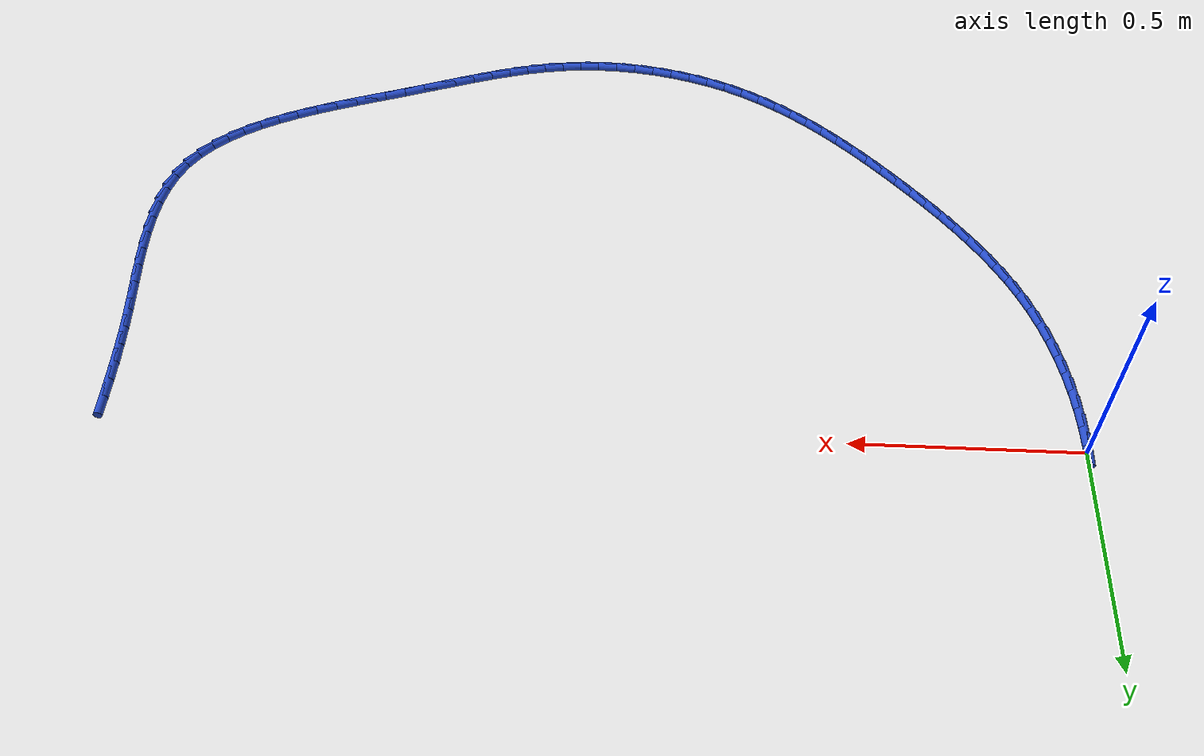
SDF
<sdf version="1.6">
 <world name="default">
  <model name="ground_plane">
   <static>1</static>
   <link name="link">
    <collision name="collision">
     <geometry><plane><normal>0 0 1</normal><size>100 100</size></plane></geometry>
     <surface><friction><ode><mu>100</mu><mu2>50</mu2></ode></friction></surface>
    </collision>
    <visual name="visual">
     <cast_shadows>0</cast_shadows>
     <geometry><plane><normal>0 0 1</normal><size>100 100</size></plane></geometry>
     <material>
      <script><uri>file://media/materials/scripts/gazebo.material</uri><name>Gazebo/WhiteGlow</name></script>
     </material>
    </visual>
   </link>
  </model>
  <model name="line">
   <link name="link_0">
    <pose>-2.7755575615628914e-17 5.551115123125783e-17 0.01 0 1.57 1.5577472647489992</pose>
    <collision name="collision">
     <geometry><cylinder><radius>0.01</radius><length>0.08</length></cylinder></geometry>
    </collision>
    <visual name="visual">
     <material>
      <script><name>Gazebo/Blue</name><uri>file://media/materials/scripts/gazebo.material</uri></script>
     </material>
     <geometry><cylinder><radius>0.01</radius><length>0.08</length></cylinder></geometry>
    </visual>
   </link>
   <link name="link_76">
    <pose>2.0851987181735137 -0.03245396486556951 0.01 0 1.57 1.543353225734103</pose>
    <collision name="collision">
     <geometry><cylinder><radius>0.01</radius><length>0.08</length></cylinder></geometry>
    </collision>
    <visual name="visual">
     <material>
      <script><name>Gazebo/Blue</name><uri>file://media/materials/scripts/gazebo.material</uri></script>
     </material>
     <geometry><cylinder><radius>0.01</radius><length>0.08</length></cylinder></geometry>
    </visual>
   </link>
   <link name="link_77">
    <pose>2.083941988912887 -0.07823646412096802 0.01 0 1.57 1.5559711853120826</pose>
    <collision name="collision">
     <geometry><cylinder><radius>0.01</radius><length>0.08</length></cylinder></geometry>
    </collision>
    <visual name="visual">
     <material>
      <script><name>Gazebo/Blue</name><uri>file://media/materials/scripts/gazebo.material</uri></script>
     </material>
     <geometry><cylinder><radius>0.01</radius><length>0.08</length></cylinder></geometry>
    </visual>
   </link>
   <link name="link_78">
    <pose>2.083257127473531 -0.12442902595015973 0.01 0 1.57 -1.5707219004072486</pose>
    <collision name="collision">
     <geometry><cylinder><radius>0.01</radius><length>0.08</length></cylinder></geometry>
    </collision>
    <visual name="visual">
     <material>
      <script><name>Gazebo/Blue</name><uri>file://media/materials/scripts/gazebo.material</uri></script>
     </material>
     <geometry><cylinder><radius>0.01</radius><length>0.08</length></cylinder></geometry>
    </visual>
   </link>
   <link name="link_79">
    <pose>2.083260607613483 -0.1711885161762562 0.01 0 1.57 -1.553775233454882</pose>
    <collision name="collision">
     <geometry><cylinder><radius>0.01</radius><length>0.08</length></cylinder></geometry>
    </collision>
    <visual name="visual">
     <material>
      <script><name>Gazebo/Blue</name><uri>file://media/materials/scripts/gazebo.material</uri></script>
     </material>
     <geometry><cylinder><radius>0.01</radius><length>0.08</length></cylinder></geometry>
    </visual>
   </link>
   <link name="link_80">
    <pose>2.0840689030907855 -0.21867180062236596 0.01 0 1.57 -1.5350500490795695</pose>
    <collision name="collision">
     <geometry><cylinder><radius>0.01</radius><length>0.08</length></cylinder></geometry>
    </collision>
    <visual name="visual">
     <material>
      <script><name>Gazebo/Blue</name><uri>file://media/materials/scripts/gazebo.material</uri></script>
     </material>
     <geometry><cylinder><radius>0.01</radius><length>0.08</length></cylinder></geometry>
    </visual>
   </link>
   <link name="link_81">
    <pose>2.085798470335357 -0.26703573147210274 0.01 0 1.57 -1.517720080324469</pose>
    <collision name="collision">
     <geometry><cylinder><radius>0.01</radius><length>0.08</length></cylinder></geometry>
    </collision>
    <visual name="visual">
     <material>
      <script><name>Gazebo/Blue</name><uri>file://media/materials/scripts/gazebo.material</uri></script>
     </material>
     <geometry><cylinder><radius>0.01</radius><length>0.08</length></cylinder></geometry>
    </visual>
   </link>
   <link name="link_82">
    <pose>2.0884167461445657 -0.31631986295380154 0.01 0 1.57 -1.5114145491426505</pose>
    <collision name="collision">
     <geometry><cylinder><radius>0.01</radius><length>0.08</length></cylinder></geometry>
    </collision>
    <visual name="visual">
     <material>
      <script><name>Gazebo/Blue</name><uri>file://media/materials/scripts/gazebo.material</uri></script>
     </material>
     <geometry><cylinder><radius>0.01</radius><length>0.08</length></cylinder></geometry>
    </visual>
   </link>
   <link name="link_83">
    <pose>2.0913799040684906 -0.3661613182034126 0.01 0 1.57 -1.5176996360397241</pose>
    <collision name="collision">
     <geometry><cylinder><radius>0.01</radius><length>0.08</length></cylinder></geometry>
    </collision>
    <visual name="visual">
     <material>
      <script><name>Gazebo/Blue</name><uri>file://media/materials/scripts/gazebo.material</uri></script>
     </material>
     <geometry><cylinder><radius>0.01</radius><length>0.08</length></cylinder></geometry>
    </visual>
   </link>
   <link name="link_84">
    <pose>2.094034561278242 -0.41611098514733563 0.01 0 1.57 -1.5366870906105743</pose>
    <collision name="collision">
     <geometry><cylinder><radius>0.01</radius><length>0.08</length></cylinder></geometry>
    </collision>
    <visual name="visual">
     <material>
      <script><name>Gazebo/Blue</name><uri>file://media/materials/scripts/gazebo.material</uri></script>
     </material>
     <geometry><cylinder><radius>0.01</radius><length>0.08</length></cylinder></geometry>
    </visual>
   </link>
   <link name="link_85">
    <pose>2.095727334944926 -0.46571975171196783 0.01 0 1.57 -1.569208674036933</pose>
    <collision name="collision">
     <geometry><cylinder><radius>0.01</radius><length>0.08</length></cylinder></geometry>
    </collision>
    <visual name="visual">
     <material>
      <script><name>Gazebo/Blue</name><uri>file://media/materials/scripts/gazebo.material</uri></script>
     </material>
     <geometry><cylinder><radius>0.01</radius><length>0.08</length></cylinder></geometry>
    </visual>
   </link>
   <link name="link_86">
    <pose>2.0958048422396547 -0.5145385058237091 0.01 0 1.57 1.5247767401578185</pose>
    <collision name="collision">
     <geometry><cylinder><radius>0.01</radius><length>0.08</length></cylinder></geometry>
    </collision>
    <visual name="visual">
     <material>
      <script><name>Gazebo/Blue</name><uri>file://media/materials/scripts/gazebo.material</uri></script>
     </material>
     <geometry><cylinder><radius>0.01</radius><length>0.08</length></cylinder></geometry>
    </visual>
   </link>
   <link name="link_87">
    <pose>2.093613700333535 -0.5621181354089567 0.01 0 1.57 1.4598349640938602</pose>
    <collision name="collision">
     <geometry><cylinder><radius>0.01</radius><length>0.08</length></cylinder></geometry>
    </collision>
    <visual name="visual">
     <material>
      <script><name>Gazebo/Blue</name><uri>file://media/materials/scripts/gazebo.material</uri></script>
     </material>
     <geometry><cylinder><radius>0.01</radius><length>0.08</length></cylinder></geometry>
    </visual>
   </link>
   <link name="link_88">
    <pose>2.0885005263976786 -0.6080095283941087 0.01 0 1.57 1.374768487740471</pose>
    <collision name="collision">
     <geometry><cylinder><radius>0.01</radius><length>0.08</length></cylinder></geometry>
    </collision>
    <visual name="visual">
     <material>
      <script><name>Gazebo/Blue</name><uri>file://media/materials/scripts/gazebo.material</uri></script>
     </material>
     <geometry><cylinder><radius>0.01</radius><length>0.08</length></cylinder></geometry>
    </visual>
   </link>
   <link name="link_89">
    <pose>2.0798119376031905 -0.6517635727055644 0.01 0 1.57 1.2667496965277025</pose>
    <collision name="collision">
     <geometry><cylinder><radius>0.01</radius><length>0.08</length></cylinder></geometry>
    </collision>
    <visual name="visual">
     <material>
      <script><name>Gazebo/Blue</name><uri>file://media/materials/scripts/gazebo.material</uri></script>
     </material>
     <geometry><cylinder><radius>0.01</radius><length>0.08</length></cylinder></geometry>
    </visual>
   </link>
   <link name="link_90">
    <pose>2.066894551121184 -0.6929311562697221 0.01 0 1.57 1.1340695664018547</pose>
    <collision name="collision">
     <geometry><cylinder><radius>0.01</radius><length>0.08</length></cylinder></geometry>
    </collision>
    <visual name="visual">
     <material>
      <script><name>Gazebo/Blue</name><uri>file://media/materials/scripts/gazebo.material</uri></script>
     </material>
     <geometry><cylinder><radius>0.01</radius><length>0.08</length></cylinder></geometry>
    </visual>
   </link>
   <link name="link_91">
    <pose>2.0490949867210158 -0.7310631686291307 0.01 0 1.57 0.9840753918291316</pose>
    <collision name="collision">
     <geometry><cylinder><radius>0.01</radius><length>0.08</length></cylinder></geometry>
    </collision>
    <visual name="visual">
     <material>
      <script><name>Gazebo/Blue</name><uri>file://media/materials/scripts/gazebo.material</uri></script>
     </material>
     <geometry><cylinder><radius>0.01</radius><length>0.08</length></cylinder></geometry>
    </visual>
   </link>
   <link name="link_92">
    <pose>2.0259727996602925 -0.7658429484804289 0.01 0 1.57 0.8441773202392268</pose>
    <collision name="collision">
     <geometry><cylinder><radius>0.01</radius><length>0.08</length></cylinder></geometry>
    </collision>
    <visual name="visual">
     <material>
      <script><name>Gazebo/Blue</name><uri>file://media/materials/scripts/gazebo.material</uri></script>
     </material>
     <geometry><cylinder><radius>0.01</radius><length>0.08</length></cylinder></geometry>
    </visual>
   </link>
   <link name="link_93">
    <pose>1.9978811903860239 -0.79744749405464 0.01 0 1.57 0.7234038554634935</pose>
    <collision name="collision">
     <geometry><cylinder><radius>0.01</radius><length>0.08</length></cylinder></geometry>
    </collision>
    <visual name="visual">
     <material>
      <script><name>Gazebo/Blue</name><uri>file://media/materials/scripts/gazebo.material</uri></script>
     </material>
     <geometry><cylinder><radius>0.01</radius><length>0.08</length></cylinder></geometry>
    </visual>
   </link>
   <link name="link_94">
    <pose>1.9653582245256056 -0.8261687925729468 0.01 0 1.57 0.6223995451969639</pose>
    <collision name="collision">
     <geometry><cylinder><radius>0.01</radius><length>0.08</length></cylinder></geometry>
    </collision>
    <visual name="visual">
     <material>
      <script><name>Gazebo/Blue</name><uri>file://media/materials/scripts/gazebo.material</uri></script>
     </material>
     <geometry><cylinder><radius>0.01</radius><length>0.08</length></cylinder></geometry>
    </visual>
   </link>
   <link name="link_95">
    <pose>1.9289419677064323 -0.8522988312565305 0.01 0 1.57 0.5398253953865746</pose>
    <collision name="collision">
     <geometry><cylinder><radius>0.01</radius><length>0.08</length></cylinder></geometry>
    </collision>
    <visual name="visual">
     <material>
      <script><name>Gazebo/Blue</name><uri>file://media/materials/scripts/gazebo.material</uri></script>
     </material>
     <geometry><cylinder><radius>0.01</radius><length>0.08</length></cylinder></geometry>
    </visual>
   </link>
   <link name="link_96">
    <pose>1.8891704855559008 -0.8761295973265729 0.01 0 1.57 0.4735380522900093</pose>
    <collision name="collision">
     <geometry><cylinder><radius>0.01</radius><length>0.08</length></cylinder></geometry>
    </collision>
    <visual name="visual">
     <material>
      <script><name>Gazebo/Blue</name><uri>file://media/materials/scripts/gazebo.material</uri></script>
     </material>
     <geometry><cylinder><radius>0.01</radius><length>0.08</length></cylinder></geometry>
    </visual>
   </link>
   <link name="link_97">
    <pose>1.8465818437014039 -0.8979530780042566 0.01 0 1.57 0.42132751541206054</pose>
    <collision name="collision">
     <geometry><cylinder><radius>0.01</radius><length>0.08</length></cylinder></geometry>
    </collision>
    <visual name="visual">
     <material>
      <script><name>Gazebo/Blue</name><uri>file://media/materials/scripts/gazebo.material</uri></script>
     </material>
     <geometry><cylinder><radius>0.01</radius><length>0.08</length></cylinder></geometry>
    </visual>
   </link>
   <link name="link_98">
    <pose>1.8017141077703387 -0.9180612605107625 0.01 0 1.57 0.38127123882235514</pose>
    <collision name="collision">
     <geometry><cylinder><radius>0.01</radius><length>0.08</length></cylinder></geometry>
    </collision>
    <visual name="visual">
     <material>
      <script><name>Gazebo/Blue</name><uri>file://media/materials/scripts/gazebo.material</uri></script>
     </material>
     <geometry><cylinder><radius>0.01</radius><length>0.08</length></cylinder></geometry>
    </visual>
   </link>
   <link name="link_99">
    <pose>1.7551053433900987 -0.9367461320672733 0.01 0 1.57 0.3518610521875989</pose>
    <collision name="collision">
     <geometry><cylinder><radius>0.01</radius><length>0.08</length></cylinder></geometry>
    </collision>
    <visual name="visual">
     <material>
      <script><name>Gazebo/Blue</name><uri>file://media/materials/scripts/gazebo.material</uri></script>
     </material>
     <geometry><cylinder><radius>0.01</radius><length>0.08</length></cylinder></geometry>
    </visual>
   </link>
   <link name="link_100">
    <pose>1.7072936161880805 -0.954299679894971 0.01 0 1.57 0.332025063910949</pose>
    <collision name="collision">
     <geometry><cylinder><radius>0.01</radius><length>0.08</length></cylinder></geometry>
    </collision>
    <visual name="visual">
     <material>
      <script><name>Gazebo/Blue</name><uri>file://media/materials/scripts/gazebo.material</uri></script>
     </material>
     <geometry><cylinder><radius>0.01</radius><length>0.08</length></cylinder></geometry>
    </visual>
   </link>
   <link name="link_101">
    <pose>1.658816991791679 -0.9710138912150363 0.01 0 1.57 0.32111546606502694</pose>
    <collision name="collision">
     <geometry><cylinder><radius>0.01</radius><length>0.08</length></cylinder></geometry>
    </collision>
    <visual name="visual">
     <material>
      <script><name>Gazebo/Blue</name><uri>file://media/materials/scripts/gazebo.material</uri></script>
     </material>
     <geometry><cylinder><radius>0.01</radius><length>0.08</length></cylinder></geometry>
    </visual>
   </link>
   <link name="link_102">
    <pose>1.6102135358282885 -0.9871807532486524 0.01 0 1.57 0.3188985013811591</pose>
    <collision name="collision">
     <geometry><cylinder><radius>0.01</radius><length>0.08</length></cylinder></geometry>
    </collision>
    <visual name="visual">
     <material>
      <script><name>Gazebo/Blue</name><uri>file://media/materials/scripts/gazebo.material</uri></script>
     </material>
     <geometry><cylinder><radius>0.01</radius><length>0.08</length></cylinder></geometry>
    </visual>
   </link>
   <link name="link_103">
    <pose>1.562021313925305 -1.0030922532170008 0.01 0 1.57 0.3251683154801974</pose>
    <collision name="collision">
     <geometry><cylinder><radius>0.01</radius><length>0.08</length></cylinder></geometry>
    </collision>
    <visual name="visual">
     <material>
      <script><name>Gazebo/Blue</name><uri>file://media/materials/scripts/gazebo.material</uri></script>
     </material>
     <geometry><cylinder><radius>0.01</radius><length>0.08</length></cylinder></geometry>
    </visual>
   </link>
   <link name="link_104">
    <pose>1.514760245777732 -1.0190256224884353 0.01 0 1.57 0.33204290027987793</pose>
    <collision name="collision">
     <geometry><cylinder><radius>0.01</radius><length>0.08</length></cylinder></geometry>
    </collision>
    <visual name="visual">
     <material>
      <script><name>Gazebo/Blue</name><uri>file://media/materials/scripts/gazebo.material</uri></script>
     </material>
     <geometry><cylinder><radius>0.01</radius><length>0.08</length></cylinder></geometry>
    </visual>
   </link>
   <link name="link_105">
    <pose>1.4685730709973723 -1.0349513783051474 0.01 0 1.57 0.33145169681392794</pose>
    <collision name="collision">
     <geometry><cylinder><radius>0.01</radius><length>0.08</length></cylinder></geometry>
    </collision>
    <visual name="visual">
     <material>
      <script><name>Gazebo/Blue</name><uri>file://media/materials/scripts/gazebo.material</uri></script>
     </material>
     <geometry><cylinder><radius>0.01</radius><length>0.08</length></cylinder></geometry>
    </visual>
   </link>
   <link name="link_106">
    <pose>1.4232464048024067 -1.0505504457832788 0.01 0 1.57 0.32263938840050915</pose>
    <collision name="collision">
     <geometry><cylinder><radius>0.01</radius><length>0.08</length></cylinder></geometry>
    </collision>
    <visual name="visual">
     <material>
      <script><name>Gazebo/Blue</name><uri>file://media/materials/scripts/gazebo.material</uri></script>
     </material>
     <geometry><cylinder><radius>0.01</radius><length>0.08</length></cylinder></geometry>
    </visual>
   </link>
   <link name="link_107">
    <pose>1.3785529319729288 -1.0654924221286872 0.01 0 1.57 0.3052407307966498</pose>
    <collision name="collision">
     <geometry><cylinder><radius>0.01</radius><length>0.08</length></cylinder></geometry>
    </collision>
    <visual name="visual">
     <material>
      <script><name>Gazebo/Blue</name><uri>file://media/materials/scripts/gazebo.material</uri></script>
     </material>
     <geometry><cylinder><radius>0.01</radius><length>0.08</length></cylinder></geometry>
    </visual>
   </link>
   <link name="link_108">
    <pose>1.3342653372890343 -1.0794469045472292 0.01 0 1.57 0.27901226496810216</pose>
    <collision name="collision">
     <geometry><cylinder><radius>0.01</radius><length>0.08</length></cylinder></geometry>
    </collision>
    <visual name="visual">
     <material>
      <script><name>Gazebo/Blue</name><uri>file://media/materials/scripts/gazebo.material</uri></script>
     </material>
     <geometry><cylinder><radius>0.01</radius><length>0.08</length></cylinder></geometry>
    </visual>
   </link>
   <link name="link_109">
    <pose>1.2901563055308198 -1.092083490244762 0.01 0 1.57 0.24388794853472792</pose>
    <collision name="collision">
     <geometry><cylinder><radius>0.01</radius><length>0.08</length></cylinder></geometry>
    </collision>
    <visual name="visual">
     <material>
      <script><name>Gazebo/Blue</name><uri>file://media/materials/scripts/gazebo.material</uri></script>
     </material>
     <geometry><cylinder><radius>0.01</radius><length>0.08</length></cylinder></geometry>
    </visual>
   </link>
   <link name="link_110">
    <pose>1.2459985214783782 -1.103071776427142 0.01 0 1.57 0.2000517992795584</pose>
    <collision name="collision">
     <geometry><cylinder><radius>0.01</radius><length>0.08</length></cylinder></geometry>
    </collision>
    <visual name="visual">
     <material>
      <script><name>Gazebo/Blue</name><uri>file://media/materials/scripts/gazebo.material</uri></script>
     </material>
     <geometry><cylinder><radius>0.01</radius><length>0.08</length></cylinder></geometry>
    </visual>
   </link>
   <link name="link_111">
    <pose>1.2015646699118063 -1.1120813603002273 0.01 0 1.57 0.14801697520895998</pose>
    <collision name="collision">
     <geometry><cylinder><radius>0.01</radius><length>0.08</length></cylinder></geometry>
    </collision>
    <visual name="visual">
     <material>
      <script><name>Gazebo/Blue</name><uri>file://media/materials/scripts/gazebo.material</uri></script>
     </material>
     <geometry><cylinder><radius>0.01</radius><length>0.08</length></cylinder></geometry>
    </visual>
   </link>
   <link name="link_112">
    <pose>1.1566274356111999 -1.1187818390698738 0.01 0 1.57 0.08892208264746651</pose>
    <collision name="collision">
     <geometry><cylinder><radius>0.01</radius><length>0.08</length></cylinder></geometry>
    </collision>
    <visual name="visual">
     <material>
      <script><name>Gazebo/Blue</name><uri>file://media/materials/scripts/gazebo.material</uri></script>
     </material>
     <geometry><cylinder><radius>0.01</radius><length>0.08</length></cylinder></geometry>
    </visual>
   </link>
   <link name="link_113">
    <pose>1.1109721108107748 -1.1228523399639876 0.01 0 1.57 0.028149192518689945</pose>
    <collision name="collision">
     <geometry><cylinder><radius>0.01</radius><length>0.08</length></cylinder></geometry>
    </collision>
    <visual name="visual">
     <material>
      <script><name>Gazebo/Blue</name><uri>file://media/materials/scripts/gazebo.material</uri></script>
     </material>
     <geometry><cylinder><radius>0.01</radius><length>0.08</length></cylinder></geometry>
    </visual>
   </link>
   <link name="link_114">
    <pose>1.0646290126036393 -1.124157205424017 0.01 0 1.57 -0.030524541643727653</pose>
    <collision name="collision">
     <geometry><cylinder><radius>0.01</radius><length>0.08</length></cylinder></geometry>
    </collision>
    <visual name="visual">
     <material>
      <script><name>Gazebo/Blue</name><uri>file://media/materials/scripts/gazebo.material</uri></script>
     </material>
     <geometry><cylinder><radius>0.01</radius><length>0.08</length></cylinder></geometry>
    </visual>
   </link>
   <link name="link_115">
    <pose>1.0178508431510958 -1.1227288796019148 0.01 0 1.57 -0.08758702143848474</pose>
    <collision name="collision">
     <geometry><cylinder><radius>0.01</radius><length>0.08</length></cylinder></geometry>
    </collision>
    <visual name="visual">
     <material>
      <script><name>Gazebo/Blue</name><uri>file://media/materials/scripts/gazebo.material</uri></script>
     </material>
     <geometry><cylinder><radius>0.01</radius><length>0.08</length></cylinder></geometry>
    </visual>
   </link>
   <link name="link_116">
    <pose>0.9708983707648755 -1.1186059038831175 0.01 0 1.57 -0.14365186290191345</pose>
    <collision name="collision">
     <geometry><cylinder><radius>0.01</radius><length>0.08</length></cylinder></geometry>
    </collision>
    <visual name="visual">
     <material>
      <script><name>Gazebo/Blue</name><uri>file://media/materials/scripts/gazebo.material</uri></script>
     </material>
     <geometry><cylinder><radius>0.01</radius><length>0.08</length></cylinder></geometry>
    </visual>
   </link>
   <link name="link_117">
    <pose>0.9240323637567074 -1.1118268196530585 0.01 0 1.57 -0.19931498584458465</pose>
    <collision name="collision">
     <geometry><cylinder><radius>0.01</radius><length>0.08</length></cylinder></geometry>
    </collision>
    <visual name="visual">
     <material>
      <script><name>Gazebo/Blue</name><uri>file://media/materials/scripts/gazebo.material</uri></script>
     </material>
     <geometry><cylinder><radius>0.01</radius><length>0.08</length></cylinder></geometry>
    </visual>
   </link>
   <link name="link_118">
    <pose>0.8775135904383197 -1.1024301682971736 0.01 0 1.57 -0.2551610617961657</pose>
    <collision name="collision">
     <geometry><cylinder><radius>0.01</radius><length>0.08</length></cylinder></geometry>
    </collision>
    <visual name="visual">
     <material>
      <script><name>Gazebo/Blue</name><uri>file://media/materials/scripts/gazebo.material</uri></script>
     </material>
     <geometry><cylinder><radius>0.01</radius><length>0.08</length></cylinder></geometry>
    </visual>
   </link>
   <link name="link_119">
    <pose>0.8316028191214433 -1.090454491200897 0.01 0 1.57 -0.3117702987148069</pose>
    <collision name="collision">
     <geometry><cylinder><radius>0.01</radius><length>0.08</length></cylinder></geometry>
    </collision>
    <visual name="visual">
     <material>
      <script><name>Gazebo/Blue</name><uri>file://media/materials/scripts/gazebo.material</uri></script>
     </material>
     <geometry><cylinder><radius>0.01</radius><length>0.08</length></cylinder></geometry>
    </visual>
   </link>
   <link name="link_120">
    <pose>0.7865608181178062 -1.0759383297496639 0.01 0 1.57 -0.36972438719568607</pose>
    <collision name="collision">
     <geometry><cylinder><radius>0.01</radius><length>0.08</length></cylinder></geometry>
    </collision>
    <visual name="visual">
     <material>
      <script><name>Gazebo/Blue</name><uri>file://media/materials/scripts/gazebo.material</uri></script>
     </material>
     <geometry><cylinder><radius>0.01</radius><length>0.08</length></cylinder></geometry>
    </visual>
   </link>
   <link name="link_121">
    <pose>0.7426483557391381 -1.0589202253289092 0.01 0 1.57 -0.42905026577535876</pose>
    <collision name="collision">
     <geometry><cylinder><radius>0.01</radius><length>0.08</length></cylinder></geometry>
    </collision>
    <visual name="visual">
     <material>
      <script><name>Gazebo/Blue</name><uri>file://media/materials/scripts/gazebo.material</uri></script>
     </material>
     <geometry><cylinder><radius>0.01</radius><length>0.08</length></cylinder></geometry>
    </visual>
   </link>
   <link name="link_122">
    <pose>0.7000932729275104 -1.039452465263523 0.01 0 1.57 -0.4862483517682641</pose>
    <collision name="collision">
     <geometry><cylinder><radius>0.01</radius><length>0.08</length></cylinder></geometry>
    </collision>
    <visual name="visual">
     <material>
      <script><name>Gazebo/Blue</name><uri>file://media/materials/scripts/gazebo.material</uri></script>
     </material>
     <geometry><cylinder><radius>0.01</radius><length>0.08</length></cylinder></geometry>
    </visual>
   </link>
   <link name="link_123">
    <pose>0.6589021411984499 -1.017679708548895 0.01 0 1.57 -0.5394607867206165</pose>
    <collision name="collision">
     <geometry><cylinder><radius>0.01</radius><length>0.08</length></cylinder></geometry>
    </collision>
    <visual name="visual">
     <material>
      <script><name>Gazebo/Blue</name><uri>file://media/materials/scripts/gazebo.material</uri></script>
     </material>
     <geometry><cylinder><radius>0.01</radius><length>0.08</length></cylinder></geometry>
    </visual>
   </link>
   <link name="link_124">
    <pose>0.6189903857545956 -0.9937846643408593 0.01 0 1.57 -0.5884139823280958</pose>
    <collision name="collision">
     <geometry><cylinder><radius>0.01</radius><length>0.08</length></cylinder></geometry>
    </collision>
    <visual name="visual">
     <material>
      <script><name>Gazebo/Blue</name><uri>file://media/materials/scripts/gazebo.material</uri></script>
     </material>
     <geometry><cylinder><radius>0.01</radius><length>0.08</length></cylinder></geometry>
    </visual>
   </link>
   <link name="link_125">
    <pose>0.5802731483644696 -0.9679501601183458 0.01 0 1.57 -0.6329605624092781</pose>
    <collision name="collision">
     <geometry><cylinder><radius>0.01</radius><length>0.08</length></cylinder></geometry>
    </collision>
    <visual name="visual">
     <material>
      <script><name>Gazebo/Blue</name><uri>file://media/materials/scripts/gazebo.material</uri></script>
     </material>
     <geometry><cylinder><radius>0.01</radius><length>0.08</length></cylinder></geometry>
    </visual>
   </link>
   <link name="link_126">
    <pose>0.5426655707965903 -0.9403590233602797 0.01 0 1.57 -0.673050558715194</pose>
    <collision name="collision">
     <geometry><cylinder><radius>0.01</radius><length>0.08</length></cylinder></geometry>
    </collision>
    <visual name="visual">
     <material>
      <script><name>Gazebo/Blue</name><uri>file://media/materials/scripts/gazebo.material</uri></script>
     </material>
     <geometry><cylinder><radius>0.01</radius><length>0.08</length></cylinder></geometry>
    </visual>
   </link>
   <link name="link_127">
    <pose>0.5060827948194804 -0.9111940815455908 0.01 0 1.57 -0.7087058405827901</pose>
    <collision name="collision">
     <geometry><cylinder><radius>0.01</radius><length>0.08</length></cylinder></geometry>
    </collision>
    <visual name="visual">
     <material>
      <script><name>Gazebo/Blue</name><uri>file://media/materials/scripts/gazebo.material</uri></script>
     </material>
     <geometry><cylinder><radius>0.01</radius><length>0.08</length></cylinder></geometry>
    </visual>
   </link>
   <link name="link_128">
    <pose>0.4704399622016593 -0.8806381621532056 0.01 0 1.57 -0.739995945706957</pose>
    <collision name="collision">
     <geometry><cylinder><radius>0.01</radius><length>0.08</length></cylinder></geometry>
    </collision>
    <visual name="visual">
     <material>
      <script><name>Gazebo/Blue</name><uri>file://media/materials/scripts/gazebo.material</uri></script>
     </material>
     <geometry><cylinder><radius>0.01</radius><length>0.08</length></cylinder></geometry>
    </visual>
   </link>
   <link name="link_129">
    <pose>0.43565221471164833 -0.8488740926620524 0.01 0 1.57 -0.7670169792537705</pose>
    <collision name="collision">
     <geometry><cylinder><radius>0.01</radius><length>0.08</length></cylinder></geometry>
    </collision>
    <visual name="visual">
     <material>
      <script><name>Gazebo/Blue</name><uri>file://media/materials/scripts/gazebo.material</uri></script>
     </material>
     <geometry><cylinder><radius>0.01</radius><length>0.08</length></cylinder></geometry>
    </visual>
   </link>
   <link name="link_130">
    <pose>0.40163469411796876 -0.8160847005510599 0.01 0 1.57 -0.7898741974751565</pose>
    <collision name="collision">
     <geometry><cylinder><radius>0.01</radius><length>0.08</length></cylinder></geometry>
    </collision>
    <visual name="visual">
     <material>
      <script><name>Gazebo/Blue</name><uri>file://media/materials/scripts/gazebo.material</uri></script>
     </material>
     <geometry><cylinder><radius>0.01</radius><length>0.08</length></cylinder></geometry>
    </visual>
   </link>
   <link name="link_131">
    <pose>0.3683025421891402 -0.7824528132991542 0.01 0 1.57 -0.8086681942285247</pose>
    <collision name="collision">
     <geometry><cylinder><radius>0.01</radius><length>0.08</length></cylinder></geometry>
    </collision>
    <visual name="visual">
     <material>
      <script><name>Gazebo/Blue</name><uri>file://media/materials/scripts/gazebo.material</uri></script>
     </material>
     <geometry><cylinder><radius>0.01</radius><length>0.08</length></cylinder></geometry>
    </visual>
   </link>
   <link name="link_132">
    <pose>0.3355709006936845 -0.7481612583852646 0.01 0 1.57 -0.8243466600693857</pose>
    <collision name="collision">
     <geometry><cylinder><radius>0.01</radius><length>0.08</length></cylinder></geometry>
    </collision>
    <visual name="visual">
     <material>
      <script><name>Gazebo/Blue</name><uri>file://media/materials/scripts/gazebo.material</uri></script>
     </material>
     <geometry><cylinder><radius>0.01</radius><length>0.08</length></cylinder></geometry>
    </visual>
   </link>
   <link name="link_133">
    <pose>0.30338540447107143 -0.7133656279971379 0.01 0 1.57 -0.842343148564853</pose>
    <collision name="collision">
     <geometry><cylinder><radius>0.01</radius><length>0.08</length></cylinder></geometry>
    </collision>
    <visual name="visual">
     <material>
      <script><name>Gazebo/Blue</name><uri>file://media/materials/scripts/gazebo.material</uri></script>
     </material>
     <geometry><cylinder><radius>0.01</radius><length>0.08</length></cylinder></geometry>
    </visual>
   </link>
   <link name="link_134">
    <pose>0.2718811317404413 -0.6780523104526989 0.01 0 1.57 -0.8648126773758077</pose>
    <collision name="collision">
     <geometry><cylinder><radius>0.01</radius><length>0.08</length></cylinder></geometry>
    </collision>
    <visual name="visual">
     <material>
      <script><name>Gazebo/Blue</name><uri>file://media/materials/scripts/gazebo.material</uri></script>
     </material>
     <geometry><cylinder><radius>0.01</radius><length>0.08</length></cylinder></geometry>
    </visual>
   </link>
   <link name="link_135">
    <pose>0.24126580400534517 -0.6421428117559068 0.01 0 1.57 -0.8918847975802547</pose>
    <collision name="collision">
     <geometry><cylinder><radius>0.01</radius><length>0.08</length></cylinder></geometry>
    </collision>
    <visual name="visual">
     <material>
      <script><name>Gazebo/Blue</name><uri>file://media/materials/scripts/gazebo.material</uri></script>
     </material>
     <geometry><cylinder><radius>0.01</radius><length>0.08</length></cylinder></geometry>
    </visual>
   </link>
   <link name="link_136">
    <pose>0.21174729152796792 -0.6055585050449677 0.01 0 1.57 -0.9236964717857078</pose>
    <collision name="collision">
     <geometry><cylinder><radius>0.01</radius><length>0.08</length></cylinder></geometry>
    </collision>
    <visual name="visual">
     <material>
      <script><name>Gazebo/Blue</name><uri>file://media/materials/scripts/gazebo.material</uri></script>
     </material>
     <geometry><cylinder><radius>0.01</radius><length>0.08</length></cylinder></geometry>
    </visual>
   </link>
   <link name="link_137">
    <pose>0.18353346457049607 -0.568220763458089 0.01 0 1.57 -0.9603797351957879</pose>
    <collision name="collision">
     <geometry><cylinder><radius>0.01</radius><length>0.08</length></cylinder></geometry>
    </collision>
    <visual name="visual">
     <material>
      <script><name>Gazebo/Blue</name><uri>file://media/materials/scripts/gazebo.material</uri></script>
     </material>
     <geometry><cylinder><radius>0.01</radius><length>0.08</length></cylinder></geometry>
    </visual>
   </link>
   <link name="link_138">
    <pose>0.15683219339511612 -0.5300509601334787 0.01 0 1.57 -1.002040075614203</pose>
    <collision name="collision">
     <geometry><cylinder><radius>0.01</radius><length>0.08</length></cylinder></geometry>
    </collision>
    <visual name="visual">
     <material>
      <script><name>Gazebo/Blue</name><uri>file://media/materials/scripts/gazebo.material</uri></script>
     </material>
     <geometry><cylinder><radius>0.01</radius><length>0.08</length></cylinder></geometry>
    </visual>
   </link>
   <link name="link_139">
    <pose>0.13185134826401326 -0.4909704682093431 0.01 0 1.57 -1.0487293311354489</pose>
    <collision name="collision">
     <geometry><cylinder><radius>0.01</radius><length>0.08</length></cylinder></geometry>
    </collision>
    <visual name="visual">
     <material>
      <script><name>Gazebo/Blue</name><uri>file://media/materials/scripts/gazebo.material</uri></script>
     </material>
     <geometry><cylinder><radius>0.01</radius><length>0.08</length></cylinder></geometry>
    </visual>
   </link>
   <link name="link_140">
    <pose>0.10879879943937426 -0.4509006608238904 0.01 0 1.57 -1.1004136502361703</pose>
    <collision name="collision">
     <geometry><cylinder><radius>0.01</radius><length>0.08</length></cylinder></geometry>
    </collision>
    <visual name="visual">
     <material>
      <script><name>Gazebo/Blue</name><uri>file://media/materials/scripts/gazebo.material</uri></script>
     </material>
     <geometry><cylinder><radius>0.01</radius><length>0.08</length></cylinder></geometry>
    </visual>
   </link>
   <link name="link_141">
    <pose>0.08788241718338442 -0.40976291111532664 0.01 0 1.57 -1.156060171248307</pose>
    <collision name="collision">
     <geometry><cylinder><radius>0.01</radius><length>0.08</length></cylinder></geometry>
    </collision>
    <visual name="visual">
     <material>
      <script><name>Gazebo/Blue</name><uri>file://media/materials/scripts/gazebo.material</uri></script>
     </material>
     <geometry><cylinder><radius>0.01</radius><length>0.08</length></cylinder></geometry>
    </visual>
   </link>
   <link name="link_142">
    <pose>0.06927636227940115 -0.3675027102106923 0.01 0 1.57 -1.2111083267589662</pose>
    <collision name="collision">
     <geometry><cylinder><radius>0.01</radius><length>0.08</length></cylinder></geometry>
    </collision>
    <visual name="visual">
     <material>
      <script><name>Gazebo/Blue</name><uri>file://media/materials/scripts/gazebo.material</uri></script>
     </material>
     <geometry><cylinder><radius>0.01</radius><length>0.08</length></cylinder></geometry>
    </visual>
   </link>
   <link name="link_143">
    <pose>0.05298708419298284 -0.3241855409969244 0.01 0 1.57 -1.2641440593645639</pose>
    <collision name="collision">
     <geometry><cylinder><radius>0.01</radius><length>0.08</length></cylinder></geometry>
    </collision>
    <visual name="visual">
     <material>
      <script><name>Gazebo/Blue</name><uri>file://media/materials/scripts/gazebo.material</uri></script>
     </material>
     <geometry><cylinder><radius>0.01</radius><length>0.08</length></cylinder></geometry>
    </visual>
   </link>
   <link name="link_144">
    <pose>0.03896897593914203 -0.2799141309858087 0.01 0 1.57 -1.3151706276379933</pose>
    <collision name="collision">
     <geometry><cylinder><radius>0.01</radius><length>0.08</length></cylinder></geometry>
    </collision>
    <visual name="visual">
     <material>
      <script><name>Gazebo/Blue</name><uri>file://media/materials/scripts/gazebo.material</uri></script>
     </material>
     <geometry><cylinder><radius>0.01</radius><length>0.08</length></cylinder></geometry>
    </visual>
   </link>
   <link name="link_145">
    <pose>0.027176414430375058 -0.2347912192099391 0.01 0 1.57 -1.3642303938873424</pose>
    <collision name="collision">
     <geometry><cylinder><radius>0.01</radius><length>0.08</length></cylinder></geometry>
    </collision>
    <visual name="visual">
     <material>
      <script><name>Gazebo/Blue</name><uri>file://media/materials/scripts/gazebo.material</uri></script>
     </material>
     <geometry><cylinder><radius>0.01</radius><length>0.08</length></cylinder></geometry>
    </visual>
   </link>
   <link name="link_146">
    <pose>0.017563776579177407 -0.1889195447019062 0.01 0 1.57 -1.4113969352419393</pose>
    <collision name="collision">
     <geometry><cylinder><radius>0.01</radius><length>0.08</length></cylinder></geometry>
    </collision>
    <visual name="visual">
     <material>
      <script><name>Gazebo/Blue</name><uri>file://media/materials/scripts/gazebo.material</uri></script>
     </material>
     <geometry><cylinder><radius>0.01</radius><length>0.08</length></cylinder></geometry>
    </visual>
   </link>
   <link name="link_147">
    <pose>0.010085439298045201 -0.14240184649430343 0.01 0 1.57 -1.4567681099739578</pose>
    <collision name="collision">
     <geometry><cylinder><radius>0.01</radius><length>0.08</length></cylinder></geometry>
    </collision>
    <visual name="visual">
     <material>
      <script><name>Gazebo/Blue</name><uri>file://media/materials/scripts/gazebo.material</uri></script>
     </material>
     <geometry><cylinder><radius>0.01</radius><length>0.08</length></cylinder></geometry>
    </visual>
   </link>
   <link name="link_148">
    <pose>0.0046957794994743635 -0.09534086361972369 0.01 0 1.57 -1.5004599627375712</pose>
    <collision name="collision">
     <geometry><cylinder><radius>0.01</radius><length>0.08</length></cylinder></geometry>
    </collision>
    <visual name="visual">
     <material>
      <script><name>Gazebo/Blue</name><uri>file://media/materials/scripts/gazebo.material</uri></script>
     </material>
     <geometry><cylinder><radius>0.01</radius><length>0.08</length></cylinder></geometry>
    </visual>
   </link>
   <link name="link_149">
    <pose>0.0013491740959606221 -0.0478393351107578 0.01 0 1.57 -1.5426016086037169</pose>
    <collision name="collision">
     <geometry><cylinder><radius>0.01</radius><length>0.08</length></cylinder></geometry>
    </collision>
    <visual name="visual">
     <material>
      <script><name>Gazebo/Blue</name><uri>file://media/materials/scripts/gazebo.material</uri></script>
     </material>
     <geometry><cylinder><radius>0.01</radius><length>0.08</length></cylinder></geometry>
    </visual>
   </link>
   <link name="link_150">
    <pose>-4.5102810375396984e-17 2.0816681711721685e-16 0.01 0 1.57 1.5582615363864443</pose>
    <collision name="collision">
     <geometry><cylinder><radius>0.01</radius><length>0.08</length></cylinder></geometry>
    </collision>
    <visual name="visual">
     <material>
      <script><name>Gazebo/Blue</name><uri>file://media/materials/scripts/gazebo.material</uri></script>
     </material>
     <geometry><cylinder><radius>0.01</radius><length>0.08</length></cylinder></geometry>
    </visual>
   </link>
  </model>
 </world>
</sdf>
